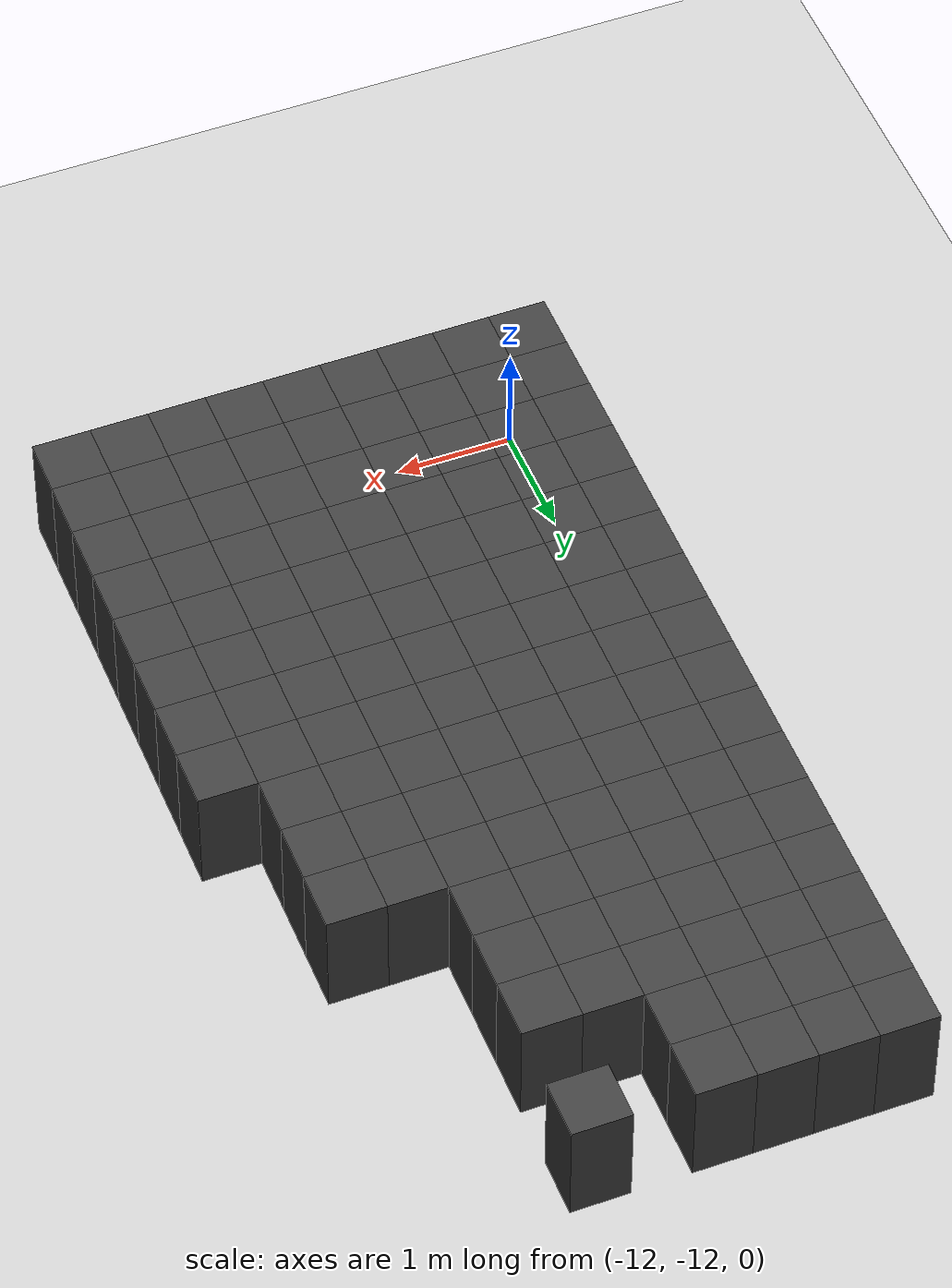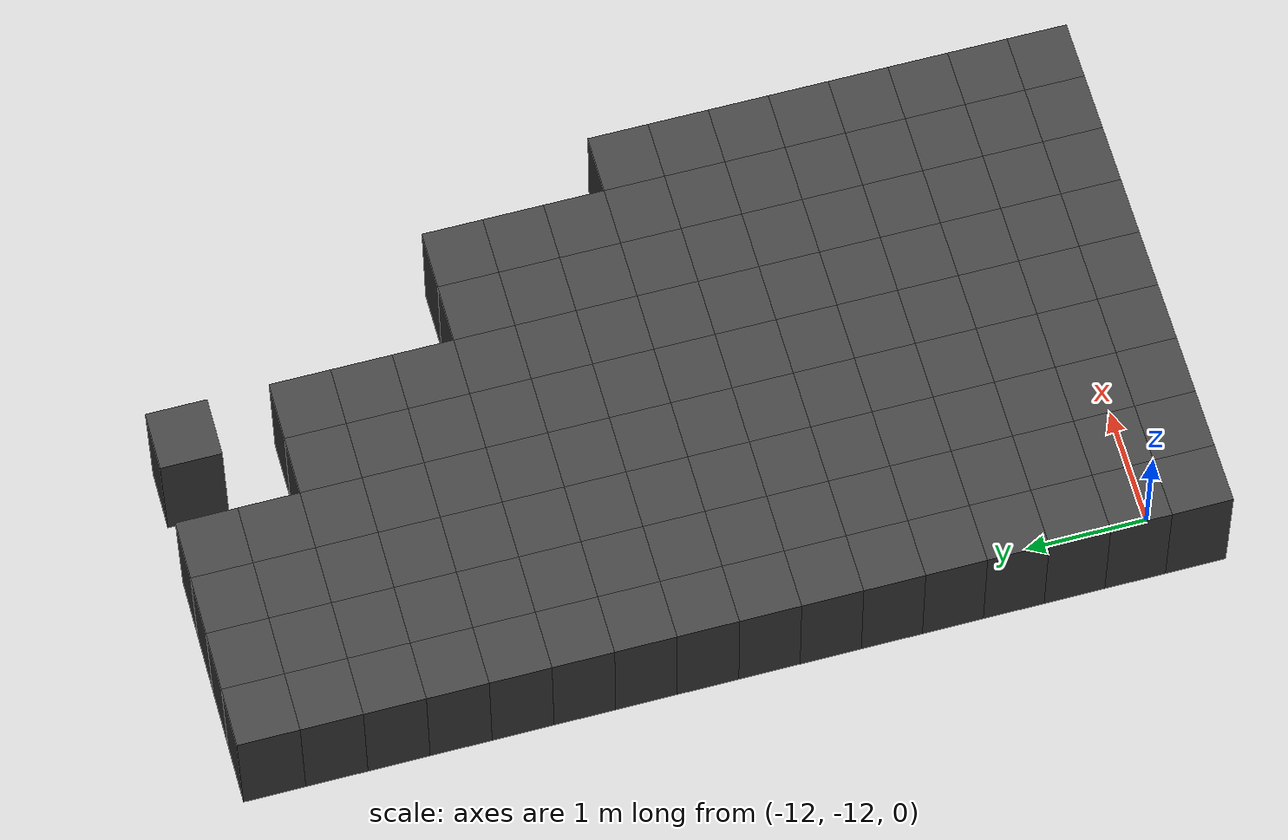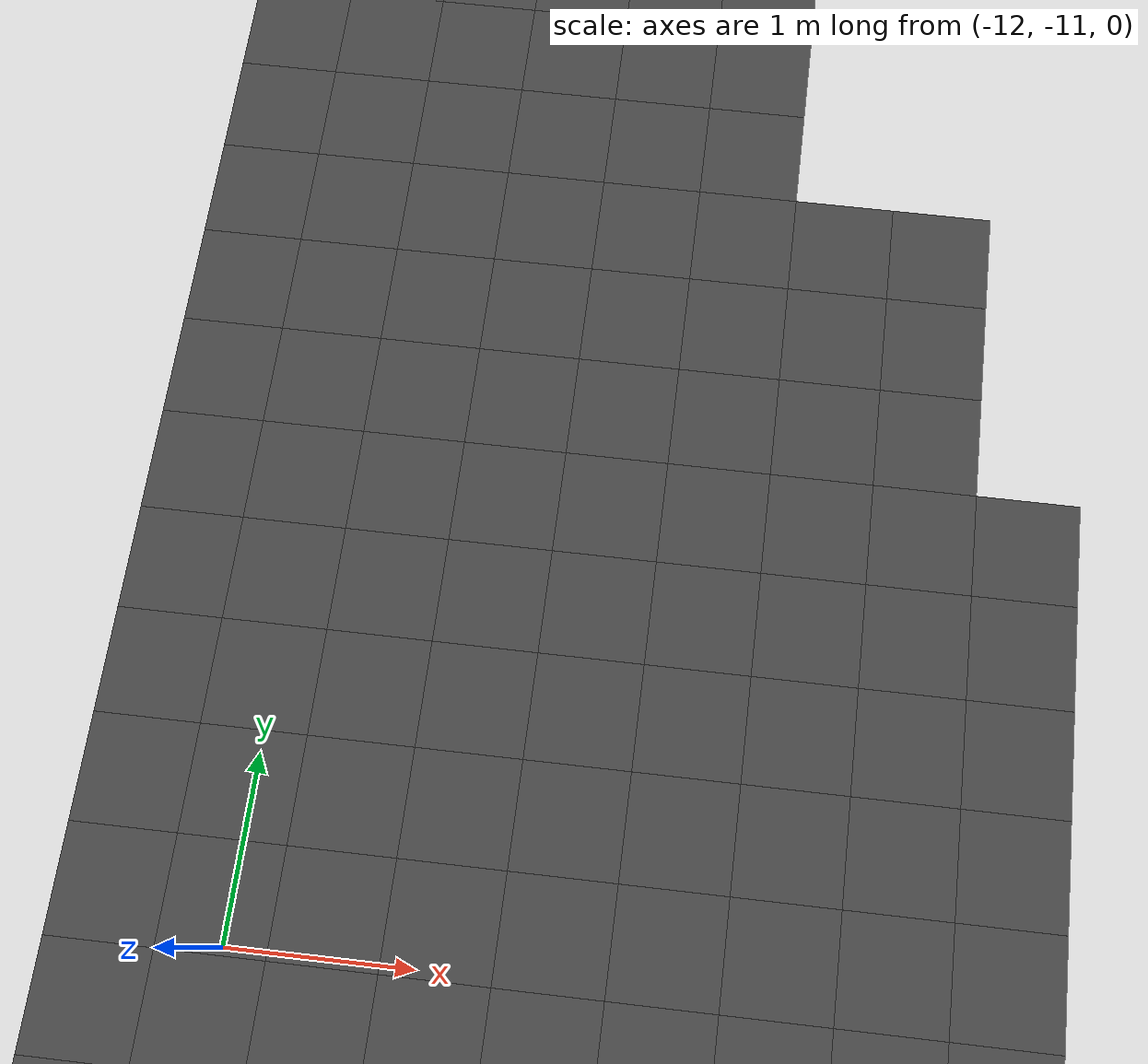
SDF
<sdf version="1.7">
 <world name="map_12818">
  <model name="ground_plane">
   <static>true</static>
   <link name="link">
    <collision name="collision">
     <geometry><plane><normal>0 0 1</normal><size>200 200</size></plane></geometry>
    </collision>
    <visual name="visual">
     <geometry><plane><normal>0 0 1</normal><size>200 200</size></plane></geometry>
     <material><ambient>0.8 0.8 0.8 1</ambient><diffuse>0.8 0.8 0.8 1</diffuse></material>
    </visual>
   </link>
  </model>
  <model name="maze_environment">
   <static>true</static>
   <link name="wall_1436">
    <pose>-12.250 -4.750 0.500 0 0 0</pose>
    <collision name="col"><geometry><box><size>0.5 0.5 1.0</size></box></geometry></collision>
    <visual name="vis">
     <geometry><box><size>0.5 0.5 1.0</size></box></geometry>
     <material><ambient>0.15 0.15 0.15 1</ambient><diffuse>0.25 0.25 0.25 1</diffuse></material>
    </visual>
   </link>
   <link name="wall_1437">
    <pose>-11.750 -4.750 0.500 0 0 0</pose>
    <collision name="col"><geometry><box><size>0.5 0.5 1.0</size></box></geometry></collision>
    <visual name="vis">
     <geometry><box><size>0.5 0.5 1.0</size></box></geometry>
     <material><ambient>0.15 0.15 0.15 1</ambient><diffuse>0.25 0.25 0.25 1</diffuse></material>
    </visual>
   </link>
   <link name="wall_1438">
    <pose>-11.250 -4.750 0.500 0 0 0</pose>
    <collision name="col"><geometry><box><size>0.5 0.5 1.0</size></box></geometry></collision>
    <visual name="vis">
     <geometry><box><size>0.5 0.5 1.0</size></box></geometry>
     <material><ambient>0.15 0.15 0.15 1</ambient><diffuse>0.25 0.25 0.25 1</diffuse></material>
    </visual>
   </link>
   <link name="wall_1439">
    <pose>-10.750 -4.750 0.500 0 0 0</pose>
    <collision name="col"><geometry><box><size>0.5 0.5 1.0</size></box></geometry></collision>
    <visual name="vis">
     <geometry><box><size>0.5 0.5 1.0</size></box></geometry>
     <material><ambient>0.15 0.15 0.15 1</ambient><diffuse>0.25 0.25 0.25 1</diffuse></material>
    </visual>
   </link>
   <link name="wall_1440">
    <pose>-9.750 -4.750 0.500 0 0 0</pose>
    <collision name="col"><geometry><box><size>0.5 0.5 1.0</size></box></geometry></collision>
    <visual name="vis">
     <geometry><box><size>0.5 0.5 1.0</size></box></geometry>
     <material><ambient>0.15 0.15 0.15 1</ambient><diffuse>0.25 0.25 0.25 1</diffuse></material>
    </visual>
   </link>
   <link name="wall_1472">
    <pose>-12.250 -5.250 0.500 0 0 0</pose>
    <collision name="col"><geometry><box><size>0.5 0.5 1.0</size></box></geometry></collision>
    <visual name="vis">
     <geometry><box><size>0.5 0.5 1.0</size></box></geometry>
     <material><ambient>0.15 0.15 0.15 1</ambient><diffuse>0.25 0.25 0.25 1</diffuse></material>
    </visual>
   </link>
   <link name="wall_1473">
    <pose>-11.750 -5.250 0.500 0 0 0</pose>
    <collision name="col"><geometry><box><size>0.5 0.5 1.0</size></box></geometry></collision>
    <visual name="vis">
     <geometry><box><size>0.5 0.5 1.0</size></box></geometry>
     <material><ambient>0.15 0.15 0.15 1</ambient><diffuse>0.25 0.25 0.25 1</diffuse></material>
    </visual>
   </link>
   <link name="wall_1474">
    <pose>-11.250 -5.250 0.500 0 0 0</pose>
    <collision name="col"><geometry><box><size>0.5 0.5 1.0</size></box></geometry></collision>
    <visual name="vis">
     <geometry><box><size>0.5 0.5 1.0</size></box></geometry>
     <material><ambient>0.15 0.15 0.15 1</ambient><diffuse>0.25 0.25 0.25 1</diffuse></material>
    </visual>
   </link>
   <link name="wall_1475">
    <pose>-10.750 -5.250 0.500 0 0 0</pose>
    <collision name="col"><geometry><box><size>0.5 0.5 1.0</size></box></geometry></collision>
    <visual name="vis">
     <geometry><box><size>0.5 0.5 1.0</size></box></geometry>
     <material><ambient>0.15 0.15 0.15 1</ambient><diffuse>0.25 0.25 0.25 1</diffuse></material>
    </visual>
   </link>
   <link name="wall_1503">
    <pose>-12.250 -5.750 0.500 0 0 0</pose>
    <collision name="col"><geometry><box><size>0.5 0.5 1.0</size></box></geometry></collision>
    <visual name="vis">
     <geometry><box><size>0.5 0.5 1.0</size></box></geometry>
     <material><ambient>0.15 0.15 0.15 1</ambient><diffuse>0.25 0.25 0.25 1</diffuse></material>
    </visual>
   </link>
   <link name="wall_1504">
    <pose>-11.750 -5.750 0.500 0 0 0</pose>
    <collision name="col"><geometry><box><size>0.5 0.5 1.0</size></box></geometry></collision>
    <visual name="vis">
     <geometry><box><size>0.5 0.5 1.0</size></box></geometry>
     <material><ambient>0.15 0.15 0.15 1</ambient><diffuse>0.25 0.25 0.25 1</diffuse></material>
    </visual>
   </link>
   <link name="wall_1505">
    <pose>-11.250 -5.750 0.500 0 0 0</pose>
    <collision name="col"><geometry><box><size>0.5 0.5 1.0</size></box></geometry></collision>
    <visual name="vis">
     <geometry><box><size>0.5 0.5 1.0</size></box></geometry>
     <material><ambient>0.15 0.15 0.15 1</ambient><diffuse>0.25 0.25 0.25 1</diffuse></material>
    </visual>
   </link>
   <link name="wall_1506">
    <pose>-10.750 -5.750 0.500 0 0 0</pose>
    <collision name="col"><geometry><box><size>0.5 0.5 1.0</size></box></geometry></collision>
    <visual name="vis">
     <geometry><box><size>0.5 0.5 1.0</size></box></geometry>
     <material><ambient>0.15 0.15 0.15 1</ambient><diffuse>0.25 0.25 0.25 1</diffuse></material>
    </visual>
   </link>
   <link name="wall_1507">
    <pose>-10.250 -5.750 0.500 0 0 0</pose>
    <collision name="col"><geometry><box><size>0.5 0.5 1.0</size></box></geometry></collision>
    <visual name="vis">
     <geometry><box><size>0.5 0.5 1.0</size></box></geometry>
     <material><ambient>0.15 0.15 0.15 1</ambient><diffuse>0.25 0.25 0.25 1</diffuse></material>
    </visual>
   </link>
   <link name="wall_1508">
    <pose>-9.750 -5.750 0.500 0 0 0</pose>
    <collision name="col"><geometry><box><size>0.5 0.5 1.0</size></box></geometry></collision>
    <visual name="vis">
     <geometry><box><size>0.5 0.5 1.0</size></box></geometry>
     <material><ambient>0.15 0.15 0.15 1</ambient><diffuse>0.25 0.25 0.25 1</diffuse></material>
    </visual>
   </link>
   <link name="wall_1536">
    <pose>-12.250 -6.250 0.500 0 0 0</pose>
    <collision name="col"><geometry><box><size>0.5 0.5 1.0</size></box></geometry></collision>
    <visual name="vis">
     <geometry><box><size>0.5 0.5 1.0</size></box></geometry>
     <material><ambient>0.15 0.15 0.15 1</ambient><diffuse>0.25 0.25 0.25 1</diffuse></material>
    </visual>
   </link>
   <link name="wall_1537">
    <pose>-11.750 -6.250 0.500 0 0 0</pose>
    <collision name="col"><geometry><box><size>0.5 0.5 1.0</size></box></geometry></collision>
    <visual name="vis">
     <geometry><box><size>0.5 0.5 1.0</size></box></geometry>
     <material><ambient>0.15 0.15 0.15 1</ambient><diffuse>0.25 0.25 0.25 1</diffuse></material>
    </visual>
   </link>
   <link name="wall_1538">
    <pose>-11.250 -6.250 0.500 0 0 0</pose>
    <collision name="col"><geometry><box><size>0.5 0.5 1.0</size></box></geometry></collision>
    <visual name="vis">
     <geometry><box><size>0.5 0.5 1.0</size></box></geometry>
     <material><ambient>0.15 0.15 0.15 1</ambient><diffuse>0.25 0.25 0.25 1</diffuse></material>
    </visual>
   </link>
   <link name="wall_1539">
    <pose>-10.750 -6.250 0.500 0 0 0</pose>
    <collision name="col"><geometry><box><size>0.5 0.5 1.0</size></box></geometry></collision>
    <visual name="vis">
     <geometry><box><size>0.5 0.5 1.0</size></box></geometry>
     <material><ambient>0.15 0.15 0.15 1</ambient><diffuse>0.25 0.25 0.25 1</diffuse></material>
    </visual>
   </link>
   <link name="wall_1540">
    <pose>-10.250 -6.250 0.500 0 0 0</pose>
    <collision name="col"><geometry><box><size>0.5 0.5 1.0</size></box></geometry></collision>
    <visual name="vis">
     <geometry><box><size>0.5 0.5 1.0</size></box></geometry>
     <material><ambient>0.15 0.15 0.15 1</ambient><diffuse>0.25 0.25 0.25 1</diffuse></material>
    </visual>
   </link>
   <link name="wall_1541">
    <pose>-9.750 -6.250 0.500 0 0 0</pose>
    <collision name="col"><geometry><box><size>0.5 0.5 1.0</size></box></geometry></collision>
    <visual name="vis">
     <geometry><box><size>0.5 0.5 1.0</size></box></geometry>
     <material><ambient>0.15 0.15 0.15 1</ambient><diffuse>0.25 0.25 0.25 1</diffuse></material>
    </visual>
   </link>
   <link name="wall_1569">
    <pose>-12.250 -6.750 0.500 0 0 0</pose>
    <collision name="col"><geometry><box><size>0.5 0.5 1.0</size></box></geometry></collision>
    <visual name="vis">
     <geometry><box><size>0.5 0.5 1.0</size></box></geometry>
     <material><ambient>0.15 0.15 0.15 1</ambient><diffuse>0.25 0.25 0.25 1</diffuse></material>
    </visual>
   </link>
   <link name="wall_1570">
    <pose>-11.750 -6.750 0.500 0 0 0</pose>
    <collision name="col"><geometry><box><size>0.5 0.5 1.0</size></box></geometry></collision>
    <visual name="vis">
     <geometry><box><size>0.5 0.5 1.0</size></box></geometry>
     <material><ambient>0.15 0.15 0.15 1</ambient><diffuse>0.25 0.25 0.25 1</diffuse></material>
    </visual>
   </link>
   <link name="wall_1571">
    <pose>-11.250 -6.750 0.500 0 0 0</pose>
    <collision name="col"><geometry><box><size>0.5 0.5 1.0</size></box></geometry></collision>
    <visual name="vis">
     <geometry><box><size>0.5 0.5 1.0</size></box></geometry>
     <material><ambient>0.15 0.15 0.15 1</ambient><diffuse>0.25 0.25 0.25 1</diffuse></material>
    </visual>
   </link>
   <link name="wall_1572">
    <pose>-10.750 -6.750 0.500 0 0 0</pose>
    <collision name="col"><geometry><box><size>0.5 0.5 1.0</size></box></geometry></collision>
    <visual name="vis">
     <geometry><box><size>0.5 0.5 1.0</size></box></geometry>
     <material><ambient>0.15 0.15 0.15 1</ambient><diffuse>0.25 0.25 0.25 1</diffuse></material>
    </visual>
   </link>
   <link name="wall_1573">
    <pose>-10.250 -6.750 0.500 0 0 0</pose>
    <collision name="col"><geometry><box><size>0.5 0.5 1.0</size></box></geometry></collision>
    <visual name="vis">
     <geometry><box><size>0.5 0.5 1.0</size></box></geometry>
     <material><ambient>0.15 0.15 0.15 1</ambient><diffuse>0.25 0.25 0.25 1</diffuse></material>
    </visual>
   </link>
   <link name="wall_1574">
    <pose>-9.750 -6.750 0.500 0 0 0</pose>
    <collision name="col"><geometry><box><size>0.5 0.5 1.0</size></box></geometry></collision>
    <visual name="vis">
     <geometry><box><size>0.5 0.5 1.0</size></box></geometry>
     <material><ambient>0.15 0.15 0.15 1</ambient><diffuse>0.25 0.25 0.25 1</diffuse></material>
    </visual>
   </link>
   <link name="wall_1598">
    <pose>-12.250 -7.250 0.500 0 0 0</pose>
    <collision name="col"><geometry><box><size>0.5 0.5 1.0</size></box></geometry></collision>
    <visual name="vis">
     <geometry><box><size>0.5 0.5 1.0</size></box></geometry>
     <material><ambient>0.15 0.15 0.15 1</ambient><diffuse>0.25 0.25 0.25 1</diffuse></material>
    </visual>
   </link>
   <link name="wall_1599">
    <pose>-11.750 -7.250 0.500 0 0 0</pose>
    <collision name="col"><geometry><box><size>0.5 0.5 1.0</size></box></geometry></collision>
    <visual name="vis">
     <geometry><box><size>0.5 0.5 1.0</size></box></geometry>
     <material><ambient>0.15 0.15 0.15 1</ambient><diffuse>0.25 0.25 0.25 1</diffuse></material>
    </visual>
   </link>
   <link name="wall_1600">
    <pose>-11.250 -7.250 0.500 0 0 0</pose>
    <collision name="col"><geometry><box><size>0.5 0.5 1.0</size></box></geometry></collision>
    <visual name="vis">
     <geometry><box><size>0.5 0.5 1.0</size></box></geometry>
     <material><ambient>0.15 0.15 0.15 1</ambient><diffuse>0.25 0.25 0.25 1</diffuse></material>
    </visual>
   </link>
   <link name="wall_1601">
    <pose>-10.750 -7.250 0.500 0 0 0</pose>
    <collision name="col"><geometry><box><size>0.5 0.5 1.0</size></box></geometry></collision>
    <visual name="vis">
     <geometry><box><size>0.5 0.5 1.0</size></box></geometry>
     <material><ambient>0.15 0.15 0.15 1</ambient><diffuse>0.25 0.25 0.25 1</diffuse></material>
    </visual>
   </link>
   <link name="wall_1602">
    <pose>-10.250 -7.250 0.500 0 0 0</pose>
    <collision name="col"><geometry><box><size>0.5 0.5 1.0</size></box></geometry></collision>
    <visual name="vis">
     <geometry><box><size>0.5 0.5 1.0</size></box></geometry>
     <material><ambient>0.15 0.15 0.15 1</ambient><diffuse>0.25 0.25 0.25 1</diffuse></material>
    </visual>
   </link>
   <link name="wall_1603">
    <pose>-9.750 -7.250 0.500 0 0 0</pose>
    <collision name="col"><geometry><box><size>0.5 0.5 1.0</size></box></geometry></collision>
    <visual name="vis">
     <geometry><box><size>0.5 0.5 1.0</size></box></geometry>
     <material><ambient>0.15 0.15 0.15 1</ambient><diffuse>0.25 0.25 0.25 1</diffuse></material>
    </visual>
   </link>
   <link name="wall_1604">
    <pose>-9.250 -7.250 0.500 0 0 0</pose>
    <collision name="col"><geometry><box><size>0.5 0.5 1.0</size></box></geometry></collision>
    <visual name="vis">
     <geometry><box><size>0.5 0.5 1.0</size></box></geometry>
     <material><ambient>0.15 0.15 0.15 1</ambient><diffuse>0.25 0.25 0.25 1</diffuse></material>
    </visual>
   </link>
   <link name="wall_1605">
    <pose>-8.750 -7.250 0.500 0 0 0</pose>
    <collision name="col"><geometry><box><size>0.5 0.5 1.0</size></box></geometry></collision>
    <visual name="vis">
     <geometry><box><size>0.5 0.5 1.0</size></box></geometry>
     <material><ambient>0.15 0.15 0.15 1</ambient><diffuse>0.25 0.25 0.25 1</diffuse></material>
    </visual>
   </link>
   <link name="wall_1626">
    <pose>-12.250 -7.750 0.500 0 0 0</pose>
    <collision name="col"><geometry><box><size>0.5 0.5 1.0</size></box></geometry></collision>
    <visual name="vis">
     <geometry><box><size>0.5 0.5 1.0</size></box></geometry>
     <material><ambient>0.15 0.15 0.15 1</ambient><diffuse>0.25 0.25 0.25 1</diffuse></material>
    </visual>
   </link>
   <link name="wall_1627">
    <pose>-11.750 -7.750 0.500 0 0 0</pose>
    <collision name="col"><geometry><box><size>0.5 0.5 1.0</size></box></geometry></collision>
    <visual name="vis">
     <geometry><box><size>0.5 0.5 1.0</size></box></geometry>
     <material><ambient>0.15 0.15 0.15 1</ambient><diffuse>0.25 0.25 0.25 1</diffuse></material>
    </visual>
   </link>
   <link name="wall_1628">
    <pose>-11.250 -7.750 0.500 0 0 0</pose>
    <collision name="col"><geometry><box><size>0.5 0.5 1.0</size></box></geometry></collision>
    <visual name="vis">
     <geometry><box><size>0.5 0.5 1.0</size></box></geometry>
     <material><ambient>0.15 0.15 0.15 1</ambient><diffuse>0.25 0.25 0.25 1</diffuse></material>
    </visual>
   </link>
   <link name="wall_1629">
    <pose>-10.750 -7.750 0.500 0 0 0</pose>
    <collision name="col"><geometry><box><size>0.5 0.5 1.0</size></box></geometry></collision>
    <visual name="vis">
     <geometry><box><size>0.5 0.5 1.0</size></box></geometry>
     <material><ambient>0.15 0.15 0.15 1</ambient><diffuse>0.25 0.25 0.25 1</diffuse></material>
    </visual>
   </link>
   <link name="wall_1630">
    <pose>-10.250 -7.750 0.500 0 0 0</pose>
    <collision name="col"><geometry><box><size>0.5 0.5 1.0</size></box></geometry></collision>
    <visual name="vis">
     <geometry><box><size>0.5 0.5 1.0</size></box></geometry>
     <material><ambient>0.15 0.15 0.15 1</ambient><diffuse>0.25 0.25 0.25 1</diffuse></material>
    </visual>
   </link>
   <link name="wall_1631">
    <pose>-9.750 -7.750 0.500 0 0 0</pose>
    <collision name="col"><geometry><box><size>0.5 0.5 1.0</size></box></geometry></collision>
    <visual name="vis">
     <geometry><box><size>0.5 0.5 1.0</size></box></geometry>
     <material><ambient>0.15 0.15 0.15 1</ambient><diffuse>0.25 0.25 0.25 1</diffuse></material>
    </visual>
   </link>
   <link name="wall_1632">
    <pose>-9.250 -7.750 0.500 0 0 0</pose>
    <collision name="col"><geometry><box><size>0.5 0.5 1.0</size></box></geometry></collision>
    <visual name="vis">
     <geometry><box><size>0.5 0.5 1.0</size></box></geometry>
     <material><ambient>0.15 0.15 0.15 1</ambient><diffuse>0.25 0.25 0.25 1</diffuse></material>
    </visual>
   </link>
   <link name="wall_1633">
    <pose>-8.750 -7.750 0.500 0 0 0</pose>
    <collision name="col"><geometry><box><size>0.5 0.5 1.0</size></box></geometry></collision>
    <visual name="vis">
     <geometry><box><size>0.5 0.5 1.0</size></box></geometry>
     <material><ambient>0.15 0.15 0.15 1</ambient><diffuse>0.25 0.25 0.25 1</diffuse></material>
    </visual>
   </link>
   <link name="wall_1654">
    <pose>-12.250 -8.250 0.500 0 0 0</pose>
    <collision name="col"><geometry><box><size>0.5 0.5 1.0</size></box></geometry></collision>
    <visual name="vis">
     <geometry><box><size>0.5 0.5 1.0</size></box></geometry>
     <material><ambient>0.15 0.15 0.15 1</ambient><diffuse>0.25 0.25 0.25 1</diffuse></material>
    </visual>
   </link>
   <link name="wall_1655">
    <pose>-11.750 -8.250 0.500 0 0 0</pose>
    <collision name="col"><geometry><box><size>0.5 0.5 1.0</size></box></geometry></collision>
    <visual name="vis">
     <geometry><box><size>0.5 0.5 1.0</size></box></geometry>
     <material><ambient>0.15 0.15 0.15 1</ambient><diffuse>0.25 0.25 0.25 1</diffuse></material>
    </visual>
   </link>
   <link name="wall_1656">
    <pose>-11.250 -8.250 0.500 0 0 0</pose>
    <collision name="col"><geometry><box><size>0.5 0.5 1.0</size></box></geometry></collision>
    <visual name="vis">
     <geometry><box><size>0.5 0.5 1.0</size></box></geometry>
     <material><ambient>0.15 0.15 0.15 1</ambient><diffuse>0.25 0.25 0.25 1</diffuse></material>
    </visual>
   </link>
   <link name="wall_1657">
    <pose>-10.750 -8.250 0.500 0 0 0</pose>
    <collision name="col"><geometry><box><size>0.5 0.5 1.0</size></box></geometry></collision>
    <visual name="vis">
     <geometry><box><size>0.5 0.5 1.0</size></box></geometry>
     <material><ambient>0.15 0.15 0.15 1</ambient><diffuse>0.25 0.25 0.25 1</diffuse></material>
    </visual>
   </link>
   <link name="wall_1658">
    <pose>-10.250 -8.250 0.500 0 0 0</pose>
    <collision name="col"><geometry><box><size>0.5 0.5 1.0</size></box></geometry></collision>
    <visual name="vis">
     <geometry><box><size>0.5 0.5 1.0</size></box></geometry>
     <material><ambient>0.15 0.15 0.15 1</ambient><diffuse>0.25 0.25 0.25 1</diffuse></material>
    </visual>
   </link>
   <link name="wall_1659">
    <pose>-9.750 -8.250 0.500 0 0 0</pose>
    <collision name="col"><geometry><box><size>0.5 0.5 1.0</size></box></geometry></collision>
    <visual name="vis">
     <geometry><box><size>0.5 0.5 1.0</size></box></geometry>
     <material><ambient>0.15 0.15 0.15 1</ambient><diffuse>0.25 0.25 0.25 1</diffuse></material>
    </visual>
   </link>
   <link name="wall_1660">
    <pose>-9.250 -8.250 0.500 0 0 0</pose>
    <collision name="col"><geometry><box><size>0.5 0.5 1.0</size></box></geometry></collision>
    <visual name="vis">
     <geometry><box><size>0.5 0.5 1.0</size></box></geometry>
     <material><ambient>0.15 0.15 0.15 1</ambient><diffuse>0.25 0.25 0.25 1</diffuse></material>
    </visual>
   </link>
   <link name="wall_1661">
    <pose>-8.750 -8.250 0.500 0 0 0</pose>
    <collision name="col"><geometry><box><size>0.5 0.5 1.0</size></box></geometry></collision>
    <visual name="vis">
     <geometry><box><size>0.5 0.5 1.0</size></box></geometry>
     <material><ambient>0.15 0.15 0.15 1</ambient><diffuse>0.25 0.25 0.25 1</diffuse></material>
    </visual>
   </link>
   <link name="wall_1667">
    <pose>-12.250 -8.750 0.500 0 0 0</pose>
    <collision name="col"><geometry><box><size>0.5 0.5 1.0</size></box></geometry></collision>
    <visual name="vis">
     <geometry><box><size>0.5 0.5 1.0</size></box></geometry>
     <material><ambient>0.15 0.15 0.15 1</ambient><diffuse>0.25 0.25 0.25 1</diffuse></material>
    </visual>
   </link>
   <link name="wall_1668">
    <pose>-11.750 -8.750 0.500 0 0 0</pose>
    <collision name="col"><geometry><box><size>0.5 0.5 1.0</size></box></geometry></collision>
    <visual name="vis">
     <geometry><box><size>0.5 0.5 1.0</size></box></geometry>
     <material><ambient>0.15 0.15 0.15 1</ambient><diffuse>0.25 0.25 0.25 1</diffuse></material>
    </visual>
   </link>
   <link name="wall_1669">
    <pose>-11.250 -8.750 0.500 0 0 0</pose>
    <collision name="col"><geometry><box><size>0.5 0.5 1.0</size></box></geometry></collision>
    <visual name="vis">
     <geometry><box><size>0.5 0.5 1.0</size></box></geometry>
     <material><ambient>0.15 0.15 0.15 1</ambient><diffuse>0.25 0.25 0.25 1</diffuse></material>
    </visual>
   </link>
   <link name="wall_1670">
    <pose>-10.750 -8.750 0.500 0 0 0</pose>
    <collision name="col"><geometry><box><size>0.5 0.5 1.0</size></box></geometry></collision>
    <visual name="vis">
     <geometry><box><size>0.5 0.5 1.0</size></box></geometry>
     <material><ambient>0.15 0.15 0.15 1</ambient><diffuse>0.25 0.25 0.25 1</diffuse></material>
    </visual>
   </link>
   <link name="wall_1671">
    <pose>-10.250 -8.750 0.500 0 0 0</pose>
    <collision name="col"><geometry><box><size>0.5 0.5 1.0</size></box></geometry></collision>
    <visual name="vis">
     <geometry><box><size>0.5 0.5 1.0</size></box></geometry>
     <material><ambient>0.15 0.15 0.15 1</ambient><diffuse>0.25 0.25 0.25 1</diffuse></material>
    </visual>
   </link>
   <link name="wall_1672">
    <pose>-9.750 -8.750 0.500 0 0 0</pose>
    <collision name="col"><geometry><box><size>0.5 0.5 1.0</size></box></geometry></collision>
    <visual name="vis">
     <geometry><box><size>0.5 0.5 1.0</size></box></geometry>
     <material><ambient>0.15 0.15 0.15 1</ambient><diffuse>0.25 0.25 0.25 1</diffuse></material>
    </visual>
   </link>
   <link name="wall_1673">
    <pose>-9.250 -8.750 0.500 0 0 0</pose>
    <collision name="col"><geometry><box><size>0.5 0.5 1.0</size></box></geometry></collision>
    <visual name="vis">
     <geometry><box><size>0.5 0.5 1.0</size></box></geometry>
     <material><ambient>0.15 0.15 0.15 1</ambient><diffuse>0.25 0.25 0.25 1</diffuse></material>
    </visual>
   </link>
   <link name="wall_1674">
    <pose>-8.750 -8.750 0.500 0 0 0</pose>
    <collision name="col"><geometry><box><size>0.5 0.5 1.0</size></box></geometry></collision>
    <visual name="vis">
     <geometry><box><size>0.5 0.5 1.0</size></box></geometry>
     <material><ambient>0.15 0.15 0.15 1</ambient><diffuse>0.25 0.25 0.25 1</diffuse></material>
    </visual>
   </link>
   <link name="wall_1675">
    <pose>-8.250 -8.750 0.500 0 0 0</pose>
    <collision name="col"><geometry><box><size>0.5 0.5 1.0</size></box></geometry></collision>
    <visual name="vis">
     <geometry><box><size>0.5 0.5 1.0</size></box></geometry>
     <material><ambient>0.15 0.15 0.15 1</ambient><diffuse>0.25 0.25 0.25 1</diffuse></material>
    </visual>
   </link>
   <link name="wall_1700">
    <pose>-12.250 -9.250 0.500 0 0 0</pose>
    <collision name="col"><geometry><box><size>0.5 0.5 1.0</size></box></geometry></collision>
    <visual name="vis">
     <geometry><box><size>0.5 0.5 1.0</size></box></geometry>
     <material><ambient>0.15 0.15 0.15 1</ambient><diffuse>0.25 0.25 0.25 1</diffuse></material>
    </visual>
   </link>
   <link name="wall_1701">
    <pose>-11.750 -9.250 0.500 0 0 0</pose>
    <collision name="col"><geometry><box><size>0.5 0.5 1.0</size></box></geometry></collision>
    <visual name="vis">
     <geometry><box><size>0.5 0.5 1.0</size></box></geometry>
     <material><ambient>0.15 0.15 0.15 1</ambient><diffuse>0.25 0.25 0.25 1</diffuse></material>
    </visual>
   </link>
   <link name="wall_1702">
    <pose>-11.250 -9.250 0.500 0 0 0</pose>
    <collision name="col"><geometry><box><size>0.5 0.5 1.0</size></box></geometry></collision>
    <visual name="vis">
     <geometry><box><size>0.5 0.5 1.0</size></box></geometry>
     <material><ambient>0.15 0.15 0.15 1</ambient><diffuse>0.25 0.25 0.25 1</diffuse></material>
    </visual>
   </link>
   <link name="wall_1703">
    <pose>-10.750 -9.250 0.500 0 0 0</pose>
    <collision name="col"><geometry><box><size>0.5 0.5 1.0</size></box></geometry></collision>
    <visual name="vis">
     <geometry><box><size>0.5 0.5 1.0</size></box></geometry>
     <material><ambient>0.15 0.15 0.15 1</ambient><diffuse>0.25 0.25 0.25 1</diffuse></material>
    </visual>
   </link>
   <link name="wall_1704">
    <pose>-10.250 -9.250 0.500 0 0 0</pose>
    <collision name="col"><geometry><box><size>0.5 0.5 1.0</size></box></geometry></collision>
    <visual name="vis">
     <geometry><box><size>0.5 0.5 1.0</size></box></geometry>
     <material><ambient>0.15 0.15 0.15 1</ambient><diffuse>0.25 0.25 0.25 1</diffuse></material>
    </visual>
   </link>
   <link name="wall_1705">
    <pose>-9.750 -9.250 0.500 0 0 0</pose>
    <collision name="col"><geometry><box><size>0.5 0.5 1.0</size></box></geometry></collision>
    <visual name="vis">
     <geometry><box><size>0.5 0.5 1.0</size></box></geometry>
     <material><ambient>0.15 0.15 0.15 1</ambient><diffuse>0.25 0.25 0.25 1</diffuse></material>
    </visual>
   </link>
   <link name="wall_1706">
    <pose>-9.250 -9.250 0.500 0 0 0</pose>
    <collision name="col"><geometry><box><size>0.5 0.5 1.0</size></box></geometry></collision>
    <visual name="vis">
     <geometry><box><size>0.5 0.5 1.0</size></box></geometry>
     <material><ambient>0.15 0.15 0.15 1</ambient><diffuse>0.25 0.25 0.25 1</diffuse></material>
    </visual>
   </link>
   <link name="wall_1707">
    <pose>-8.750 -9.250 0.500 0 0 0</pose>
    <collision name="col"><geometry><box><size>0.5 0.5 1.0</size></box></geometry></collision>
    <visual name="vis">
     <geometry><box><size>0.5 0.5 1.0</size></box></geometry>
     <material><ambient>0.15 0.15 0.15 1</ambient><diffuse>0.25 0.25 0.25 1</diffuse></material>
    </visual>
   </link>
   <link name="wall_1708">
    <pose>-8.250 -9.250 0.500 0 0 0</pose>
    <collision name="col"><geometry><box><size>0.5 0.5 1.0</size></box></geometry></collision>
    <visual name="vis">
     <geometry><box><size>0.5 0.5 1.0</size></box></geometry>
     <material><ambient>0.15 0.15 0.15 1</ambient><diffuse>0.25 0.25 0.25 1</diffuse></material>
    </visual>
   </link>
   <link name="wall_1733">
    <pose>-12.250 -9.750 0.500 0 0 0</pose>
    <collision name="col"><geometry><box><size>0.5 0.5 1.0</size></box></geometry></collision>
    <visual name="vis">
     <geometry><box><size>0.5 0.5 1.0</size></box></geometry>
     <material><ambient>0.15 0.15 0.15 1</ambient><diffuse>0.25 0.25 0.25 1</diffuse></material>
    </visual>
   </link>
   <link name="wall_1734">
    <pose>-11.750 -9.750 0.500 0 0 0</pose>
    <collision name="col"><geometry><box><size>0.5 0.5 1.0</size></box></geometry></collision>
    <visual name="vis">
     <geometry><box><size>0.5 0.5 1.0</size></box></geometry>
     <material><ambient>0.15 0.15 0.15 1</ambient><diffuse>0.25 0.25 0.25 1</diffuse></material>
    </visual>
   </link>
   <link name="wall_1735">
    <pose>-11.250 -9.750 0.500 0 0 0</pose>
    <collision name="col"><geometry><box><size>0.5 0.5 1.0</size></box></geometry></collision>
    <visual name="vis">
     <geometry><box><size>0.5 0.5 1.0</size></box></geometry>
     <material><ambient>0.15 0.15 0.15 1</ambient><diffuse>0.25 0.25 0.25 1</diffuse></material>
    </visual>
   </link>
   <link name="wall_1736">
    <pose>-10.750 -9.750 0.500 0 0 0</pose>
    <collision name="col"><geometry><box><size>0.5 0.5 1.0</size></box></geometry></collision>
    <visual name="vis">
     <geometry><box><size>0.5 0.5 1.0</size></box></geometry>
     <material><ambient>0.15 0.15 0.15 1</ambient><diffuse>0.25 0.25 0.25 1</diffuse></material>
    </visual>
   </link>
   <link name="wall_1737">
    <pose>-10.250 -9.750 0.500 0 0 0</pose>
    <collision name="col"><geometry><box><size>0.5 0.5 1.0</size></box></geometry></collision>
    <visual name="vis">
     <geometry><box><size>0.5 0.5 1.0</size></box></geometry>
     <material><ambient>0.15 0.15 0.15 1</ambient><diffuse>0.25 0.25 0.25 1</diffuse></material>
    </visual>
   </link>
   <link name="wall_1738">
    <pose>-9.750 -9.750 0.500 0 0 0</pose>
    <collision name="col"><geometry><box><size>0.5 0.5 1.0</size></box></geometry></collision>
    <visual name="vis">
     <geometry><box><size>0.5 0.5 1.0</size></box></geometry>
     <material><ambient>0.15 0.15 0.15 1</ambient><diffuse>0.25 0.25 0.25 1</diffuse></material>
    </visual>
   </link>
   <link name="wall_1739">
    <pose>-9.250 -9.750 0.500 0 0 0</pose>
    <collision name="col"><geometry><box><size>0.5 0.5 1.0</size></box></geometry></collision>
    <visual name="vis">
     <geometry><box><size>0.5 0.5 1.0</size></box></geometry>
     <material><ambient>0.15 0.15 0.15 1</ambient><diffuse>0.25 0.25 0.25 1</diffuse></material>
    </visual>
   </link>
   <link name="wall_1740">
    <pose>-8.750 -9.750 0.500 0 0 0</pose>
    <collision name="col"><geometry><box><size>0.5 0.5 1.0</size></box></geometry></collision>
    <visual name="vis">
     <geometry><box><size>0.5 0.5 1.0</size></box></geometry>
     <material><ambient>0.15 0.15 0.15 1</ambient><diffuse>0.25 0.25 0.25 1</diffuse></material>
    </visual>
   </link>
   <link name="wall_1741">
    <pose>-8.250 -9.750 0.500 0 0 0</pose>
    <collision name="col"><geometry><box><size>0.5 0.5 1.0</size></box></geometry></collision>
    <visual name="vis">
     <geometry><box><size>0.5 0.5 1.0</size></box></geometry>
     <material><ambient>0.15 0.15 0.15 1</ambient><diffuse>0.25 0.25 0.25 1</diffuse></material>
    </visual>
   </link>
   <link name="wall_1770">
    <pose>-12.250 -10.250 0.500 0 0 0</pose>
    <collision name="col"><geometry><box><size>0.5 0.5 1.0</size></box></geometry></collision>
    <visual name="vis">
     <geometry><box><size>0.5 0.5 1.0</size></box></geometry>
     <material><ambient>0.15 0.15 0.15 1</ambient><diffuse>0.25 0.25 0.25 1</diffuse></material>
    </visual>
   </link>
   <link name="wall_1771">
    <pose>-11.750 -10.250 0.500 0 0 0</pose>
    <collision name="col"><geometry><box><size>0.5 0.5 1.0</size></box></geometry></collision>
    <visual name="vis">
     <geometry><box><size>0.5 0.5 1.0</size></box></geometry>
     <material><ambient>0.15 0.15 0.15 1</ambient><diffuse>0.25 0.25 0.25 1</diffuse></material>
    </visual>
   </link>
   <link name="wall_1772">
    <pose>-11.250 -10.250 0.500 0 0 0</pose>
    <collision name="col"><geometry><box><size>0.5 0.5 1.0</size></box></geometry></collision>
    <visual name="vis">
     <geometry><box><size>0.5 0.5 1.0</size></box></geometry>
     <material><ambient>0.15 0.15 0.15 1</ambient><diffuse>0.25 0.25 0.25 1</diffuse></material>
    </visual>
   </link>
   <link name="wall_1773">
    <pose>-10.750 -10.250 0.500 0 0 0</pose>
    <collision name="col"><geometry><box><size>0.5 0.5 1.0</size></box></geometry></collision>
    <visual name="vis">
     <geometry><box><size>0.5 0.5 1.0</size></box></geometry>
     <material><ambient>0.15 0.15 0.15 1</ambient><diffuse>0.25 0.25 0.25 1</diffuse></material>
    </visual>
   </link>
   <link name="wall_1774">
    <pose>-10.250 -10.250 0.500 0 0 0</pose>
    <collision name="col"><geometry><box><size>0.5 0.5 1.0</size></box></geometry></collision>
    <visual name="vis">
     <geometry><box><size>0.5 0.5 1.0</size></box></geometry>
     <material><ambient>0.15 0.15 0.15 1</ambient><diffuse>0.25 0.25 0.25 1</diffuse></material>
    </visual>
   </link>
   <link name="wall_1775">
    <pose>-9.750 -10.250 0.500 0 0 0</pose>
    <collision name="col"><geometry><box><size>0.5 0.5 1.0</size></box></geometry></collision>
    <visual name="vis">
     <geometry><box><size>0.5 0.5 1.0</size></box></geometry>
     <material><ambient>0.15 0.15 0.15 1</ambient><diffuse>0.25 0.25 0.25 1</diffuse></material>
    </visual>
   </link>
   <link name="wall_1776">
    <pose>-9.250 -10.250 0.500 0 0 0</pose>
    <collision name="col"><geometry><box><size>0.5 0.5 1.0</size></box></geometry></collision>
    <visual name="vis">
     <geometry><box><size>0.5 0.5 1.0</size></box></geometry>
     <material><ambient>0.15 0.15 0.15 1</ambient><diffuse>0.25 0.25 0.25 1</diffuse></material>
    </visual>
   </link>
   <link name="wall_1777">
    <pose>-8.750 -10.250 0.500 0 0 0</pose>
    <collision name="col"><geometry><box><size>0.5 0.5 1.0</size></box></geometry></collision>
    <visual name="vis">
     <geometry><box><size>0.5 0.5 1.0</size></box></geometry>
     <material><ambient>0.15 0.15 0.15 1</ambient><diffuse>0.25 0.25 0.25 1</diffuse></material>
    </visual>
   </link>
   <link name="wall_1778">
    <pose>-8.250 -10.250 0.500 0 0 0</pose>
    <collision name="col"><geometry><box><size>0.5 0.5 1.0</size></box></geometry></collision>
    <visual name="vis">
     <geometry><box><size>0.5 0.5 1.0</size></box></geometry>
     <material><ambient>0.15 0.15 0.15 1</ambient><diffuse>0.25 0.25 0.25 1</diffuse></material>
    </visual>
   </link>
   <link name="wall_1809">
    <pose>-12.250 -10.750 0.500 0 0 0</pose>
    <collision name="col"><geometry><box><size>0.5 0.5 1.0</size></box></geometry></collision>
    <visual name="vis">
     <geometry><box><size>0.5 0.5 1.0</size></box></geometry>
     <material><ambient>0.15 0.15 0.15 1</ambient><diffuse>0.25 0.25 0.25 1</diffuse></material>
    </visual>
   </link>
   <link name="wall_1810">
    <pose>-11.750 -10.750 0.500 0 0 0</pose>
    <collision name="col"><geometry><box><size>0.5 0.5 1.0</size></box></geometry></collision>
    <visual name="vis">
     <geometry><box><size>0.5 0.5 1.0</size></box></geometry>
     <material><ambient>0.15 0.15 0.15 1</ambient><diffuse>0.25 0.25 0.25 1</diffuse></material>
    </visual>
   </link>
   <link name="wall_1811">
    <pose>-11.250 -10.750 0.500 0 0 0</pose>
    <collision name="col"><geometry><box><size>0.5 0.5 1.0</size></box></geometry></collision>
    <visual name="vis">
     <geometry><box><size>0.5 0.5 1.0</size></box></geometry>
     <material><ambient>0.15 0.15 0.15 1</ambient><diffuse>0.25 0.25 0.25 1</diffuse></material>
    </visual>
   </link>
   <link name="wall_1812">
    <pose>-10.750 -10.750 0.500 0 0 0</pose>
    <collision name="col"><geometry><box><size>0.5 0.5 1.0</size></box></geometry></collision>
    <visual name="vis">
     <geometry><box><size>0.5 0.5 1.0</size></box></geometry>
     <material><ambient>0.15 0.15 0.15 1</ambient><diffuse>0.25 0.25 0.25 1</diffuse></material>
    </visual>
   </link>
   <link name="wall_1813">
    <pose>-10.250 -10.750 0.500 0 0 0</pose>
    <collision name="col"><geometry><box><size>0.5 0.5 1.0</size></box></geometry></collision>
    <visual name="vis">
     <geometry><box><size>0.5 0.5 1.0</size></box></geometry>
     <material><ambient>0.15 0.15 0.15 1</ambient><diffuse>0.25 0.25 0.25 1</diffuse></material>
    </visual>
   </link>
   <link name="wall_1814">
    <pose>-9.750 -10.750 0.500 0 0 0</pose>
    <collision name="col"><geometry><box><size>0.5 0.5 1.0</size></box></geometry></collision>
    <visual name="vis">
     <geometry><box><size>0.5 0.5 1.0</size></box></geometry>
     <material><ambient>0.15 0.15 0.15 1</ambient><diffuse>0.25 0.25 0.25 1</diffuse></material>
    </visual>
   </link>
   <link name="wall_1815">
    <pose>-9.250 -10.750 0.500 0 0 0</pose>
    <collision name="col"><geometry><box><size>0.5 0.5 1.0</size></box></geometry></collision>
    <visual name="vis">
     <geometry><box><size>0.5 0.5 1.0</size></box></geometry>
     <material><ambient>0.15 0.15 0.15 1</ambient><diffuse>0.25 0.25 0.25 1</diffuse></material>
    </visual>
   </link>
   <link name="wall_1816">
    <pose>-8.750 -10.750 0.500 0 0 0</pose>
    <collision name="col"><geometry><box><size>0.5 0.5 1.0</size></box></geometry></collision>
    <visual name="vis">
     <geometry><box><size>0.5 0.5 1.0</size></box></geometry>
     <material><ambient>0.15 0.15 0.15 1</ambient><diffuse>0.25 0.25 0.25 1</diffuse></material>
    </visual>
   </link>
   <link name="wall_1817">
    <pose>-8.250 -10.750 0.500 0 0 0</pose>
    <collision name="col"><geometry><box><size>0.5 0.5 1.0</size></box></geometry></collision>
    <visual name="vis">
     <geometry><box><size>0.5 0.5 1.0</size></box></geometry>
     <material><ambient>0.15 0.15 0.15 1</ambient><diffuse>0.25 0.25 0.25 1</diffuse></material>
    </visual>
   </link>
   <link name="wall_1847">
    <pose>-12.250 -11.250 0.500 0 0 0</pose>
    <collision name="col"><geometry><box><size>0.5 0.5 1.0</size></box></geometry></collision>
    <visual name="vis">
     <geometry><box><size>0.5 0.5 1.0</size></box></geometry>
     <material><ambient>0.15 0.15 0.15 1</ambient><diffuse>0.25 0.25 0.25 1</diffuse></material>
    </visual>
   </link>
   <link name="wall_1848">
    <pose>-11.750 -11.250 0.500 0 0 0</pose>
    <collision name="col"><geometry><box><size>0.5 0.5 1.0</size></box></geometry></collision>
    <visual name="vis">
     <geometry><box><size>0.5 0.5 1.0</size></box></geometry>
     <material><ambient>0.15 0.15 0.15 1</ambient><diffuse>0.25 0.25 0.25 1</diffuse></material>
    </visual>
   </link>
   <link name="wall_1849">
    <pose>-11.250 -11.250 0.500 0 0 0</pose>
    <collision name="col"><geometry><box><size>0.5 0.5 1.0</size></box></geometry></collision>
    <visual name="vis">
     <geometry><box><size>0.5 0.5 1.0</size></box></geometry>
     <material><ambient>0.15 0.15 0.15 1</ambient><diffuse>0.25 0.25 0.25 1</diffuse></material>
    </visual>
   </link>
   <link name="wall_1850">
    <pose>-10.750 -11.250 0.500 0 0 0</pose>
    <collision name="col"><geometry><box><size>0.5 0.5 1.0</size></box></geometry></collision>
    <visual name="vis">
     <geometry><box><size>0.5 0.5 1.0</size></box></geometry>
     <material><ambient>0.15 0.15 0.15 1</ambient><diffuse>0.25 0.25 0.25 1</diffuse></material>
    </visual>
   </link>
   <link name="wall_1851">
    <pose>-10.250 -11.250 0.500 0 0 0</pose>
    <collision name="col"><geometry><box><size>0.5 0.5 1.0</size></box></geometry></collision>
    <visual name="vis">
     <geometry><box><size>0.5 0.5 1.0</size></box></geometry>
     <material><ambient>0.15 0.15 0.15 1</ambient><diffuse>0.25 0.25 0.25 1</diffuse></material>
    </visual>
   </link>
   <link name="wall_1852">
    <pose>-9.750 -11.250 0.500 0 0 0</pose>
    <collision name="col"><geometry><box><size>0.5 0.5 1.0</size></box></geometry></collision>
    <visual name="vis">
     <geometry><box><size>0.5 0.5 1.0</size></box></geometry>
     <material><ambient>0.15 0.15 0.15 1</ambient><diffuse>0.25 0.25 0.25 1</diffuse></material>
    </visual>
   </link>
   <link name="wall_1853">
    <pose>-9.250 -11.250 0.500 0 0 0</pose>
    <collision name="col"><geometry><box><size>0.5 0.5 1.0</size></box></geometry></collision>
    <visual name="vis">
     <geometry><box><size>0.5 0.5 1.0</size></box></geometry>
     <material><ambient>0.15 0.15 0.15 1</ambient><diffuse>0.25 0.25 0.25 1</diffuse></material>
    </visual>
   </link>
   <link name="wall_1854">
    <pose>-8.750 -11.250 0.500 0 0 0</pose>
    <collision name="col"><geometry><box><size>0.5 0.5 1.0</size></box></geometry></collision>
    <visual name="vis">
     <geometry><box><size>0.5 0.5 1.0</size></box></geometry>
     <material><ambient>0.15 0.15 0.15 1</ambient><diffuse>0.25 0.25 0.25 1</diffuse></material>
    </visual>
   </link>
   <link name="wall_1855">
    <pose>-8.250 -11.250 0.500 0 0 0</pose>
    <collision name="col"><geometry><box><size>0.5 0.5 1.0</size></box></geometry></collision>
    <visual name="vis">
     <geometry><box><size>0.5 0.5 1.0</size></box></geometry>
     <material><ambient>0.15 0.15 0.15 1</ambient><diffuse>0.25 0.25 0.25 1</diffuse></material>
    </visual>
   </link>
   <link name="wall_1885">
    <pose>-12.250 -11.750 0.500 0 0 0</pose>
    <collision name="col"><geometry><box><size>0.5 0.5 1.0</size></box></geometry></collision>
    <visual name="vis">
     <geometry><box><size>0.5 0.5 1.0</size></box></geometry>
     <material><ambient>0.15 0.15 0.15 1</ambient><diffuse>0.25 0.25 0.25 1</diffuse></material>
    </visual>
   </link>
   <link name="wall_1886">
    <pose>-11.750 -11.750 0.500 0 0 0</pose>
    <collision name="col"><geometry><box><size>0.5 0.5 1.0</size></box></geometry></collision>
    <visual name="vis">
     <geometry><box><size>0.5 0.5 1.0</size></box></geometry>
     <material><ambient>0.15 0.15 0.15 1</ambient><diffuse>0.25 0.25 0.25 1</diffuse></material>
    </visual>
   </link>
   <link name="wall_1887">
    <pose>-11.250 -11.750 0.500 0 0 0</pose>
    <collision name="col"><geometry><box><size>0.5 0.5 1.0</size></box></geometry></collision>
    <visual name="vis">
     <geometry><box><size>0.5 0.5 1.0</size></box></geometry>
     <material><ambient>0.15 0.15 0.15 1</ambient><diffuse>0.25 0.25 0.25 1</diffuse></material>
    </visual>
   </link>
   <link name="wall_1888">
    <pose>-10.750 -11.750 0.500 0 0 0</pose>
    <collision name="col"><geometry><box><size>0.5 0.5 1.0</size></box></geometry></collision>
    <visual name="vis">
     <geometry><box><size>0.5 0.5 1.0</size></box></geometry>
     <material><ambient>0.15 0.15 0.15 1</ambient><diffuse>0.25 0.25 0.25 1</diffuse></material>
    </visual>
   </link>
   <link name="wall_1889">
    <pose>-10.250 -11.750 0.500 0 0 0</pose>
    <collision name="col"><geometry><box><size>0.5 0.5 1.0</size></box></geometry></collision>
    <visual name="vis">
     <geometry><box><size>0.5 0.5 1.0</size></box></geometry>
     <material><ambient>0.15 0.15 0.15 1</ambient><diffuse>0.25 0.25 0.25 1</diffuse></material>
    </visual>
   </link>
   <link name="wall_1890">
    <pose>-9.750 -11.750 0.500 0 0 0</pose>
    <collision name="col"><geometry><box><size>0.5 0.5 1.0</size></box></geometry></collision>
    <visual name="vis">
     <geometry><box><size>0.5 0.5 1.0</size></box></geometry>
     <material><ambient>0.15 0.15 0.15 1</ambient><diffuse>0.25 0.25 0.25 1</diffuse></material>
    </visual>
   </link>
   <link name="wall_1891">
    <pose>-9.250 -11.750 0.500 0 0 0</pose>
    <collision name="col"><geometry><box><size>0.5 0.5 1.0</size></box></geometry></collision>
    <visual name="vis">
     <geometry><box><size>0.5 0.5 1.0</size></box></geometry>
     <material><ambient>0.15 0.15 0.15 1</ambient><diffuse>0.25 0.25 0.25 1</diffuse></material>
    </visual>
   </link>
   <link name="wall_1892">
    <pose>-8.750 -11.750 0.500 0 0 0</pose>
    <collision name="col"><geometry><box><size>0.5 0.5 1.0</size></box></geometry></collision>
    <visual name="vis">
     <geometry><box><size>0.5 0.5 1.0</size></box></geometry>
     <material><ambient>0.15 0.15 0.15 1</ambient><diffuse>0.25 0.25 0.25 1</diffuse></material>
    </visual>
   </link>
   <link name="wall_1893">
    <pose>-8.250 -11.750 0.500 0 0 0</pose>
    <collision name="col"><geometry><box><size>0.5 0.5 1.0</size></box></geometry></collision>
    <visual name="vis">
     <geometry><box><size>0.5 0.5 1.0</size></box></geometry>
     <material><ambient>0.15 0.15 0.15 1</ambient><diffuse>0.25 0.25 0.25 1</diffuse></material>
    </visual>
   </link>
   <link name="wall_1925">
    <pose>-12.250 -12.250 0.500 0 0 0</pose>
    <collision name="col"><geometry><box><size>0.5 0.5 1.0</size></box></geometry></collision>
    <visual name="vis">
     <geometry><box><size>0.5 0.5 1.0</size></box></geometry>
     <material><ambient>0.15 0.15 0.15 1</ambient><diffuse>0.25 0.25 0.25 1</diffuse></material>
    </visual>
   </link>
   <link name="wall_1926">
    <pose>-11.750 -12.250 0.500 0 0 0</pose>
    <collision name="col"><geometry><box><size>0.5 0.5 1.0</size></box></geometry></collision>
    <visual name="vis">
     <geometry><box><size>0.5 0.5 1.0</size></box></geometry>
     <material><ambient>0.15 0.15 0.15 1</ambient><diffuse>0.25 0.25 0.25 1</diffuse></material>
    </visual>
   </link>
   <link name="wall_1927">
    <pose>-11.250 -12.250 0.500 0 0 0</pose>
    <collision name="col"><geometry><box><size>0.5 0.5 1.0</size></box></geometry></collision>
    <visual name="vis">
     <geometry><box><size>0.5 0.5 1.0</size></box></geometry>
     <material><ambient>0.15 0.15 0.15 1</ambient><diffuse>0.25 0.25 0.25 1</diffuse></material>
    </visual>
   </link>
   <link name="wall_1928">
    <pose>-10.750 -12.250 0.500 0 0 0</pose>
    <collision name="col"><geometry><box><size>0.5 0.5 1.0</size></box></geometry></collision>
    <visual name="vis">
     <geometry><box><size>0.5 0.5 1.0</size></box></geometry>
     <material><ambient>0.15 0.15 0.15 1</ambient><diffuse>0.25 0.25 0.25 1</diffuse></material>
    </visual>
   </link>
   <link name="wall_1929">
    <pose>-10.250 -12.250 0.500 0 0 0</pose>
    <collision name="col"><geometry><box><size>0.5 0.5 1.0</size></box></geometry></collision>
    <visual name="vis">
     <geometry><box><size>0.5 0.5 1.0</size></box></geometry>
     <material><ambient>0.15 0.15 0.15 1</ambient><diffuse>0.25 0.25 0.25 1</diffuse></material>
    </visual>
   </link>
   <link name="wall_1930">
    <pose>-9.750 -12.250 0.500 0 0 0</pose>
    <collision name="col"><geometry><box><size>0.5 0.5 1.0</size></box></geometry></collision>
    <visual name="vis">
     <geometry><box><size>0.5 0.5 1.0</size></box></geometry>
     <material><ambient>0.15 0.15 0.15 1</ambient><diffuse>0.25 0.25 0.25 1</diffuse></material>
    </visual>
   </link>
   <link name="wall_1931">
    <pose>-9.250 -12.250 0.500 0 0 0</pose>
    <collision name="col"><geometry><box><size>0.5 0.5 1.0</size></box></geometry></collision>
    <visual name="vis">
     <geometry><box><size>0.5 0.5 1.0</size></box></geometry>
     <material><ambient>0.15 0.15 0.15 1</ambient><diffuse>0.25 0.25 0.25 1</diffuse></material>
    </visual>
   </link>
   <link name="wall_1932">
    <pose>-8.750 -12.250 0.500 0 0 0</pose>
    <collision name="col"><geometry><box><size>0.5 0.5 1.0</size></box></geometry></collision>
    <visual name="vis">
     <geometry><box><size>0.5 0.5 1.0</size></box></geometry>
     <material><ambient>0.15 0.15 0.15 1</ambient><diffuse>0.25 0.25 0.25 1</diffuse></material>
    </visual>
   </link>
   <link name="wall_1933">
    <pose>-8.250 -12.250 0.500 0 0 0</pose>
    <collision name="col"><geometry><box><size>0.5 0.5 1.0</size></box></geometry></collision>
    <visual name="vis">
     <geometry><box><size>0.5 0.5 1.0</size></box></geometry>
     <material><ambient>0.15 0.15 0.15 1</ambient><diffuse>0.25 0.25 0.25 1</diffuse></material>
    </visual>
   </link>
  </model>
 </world>
</sdf>
